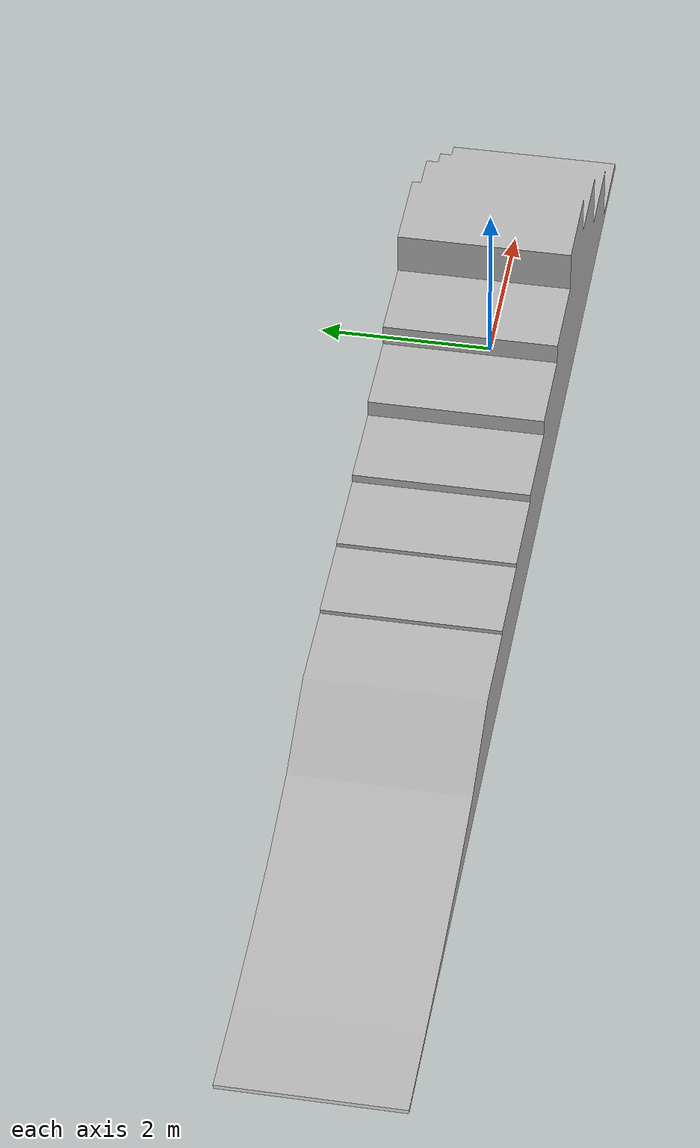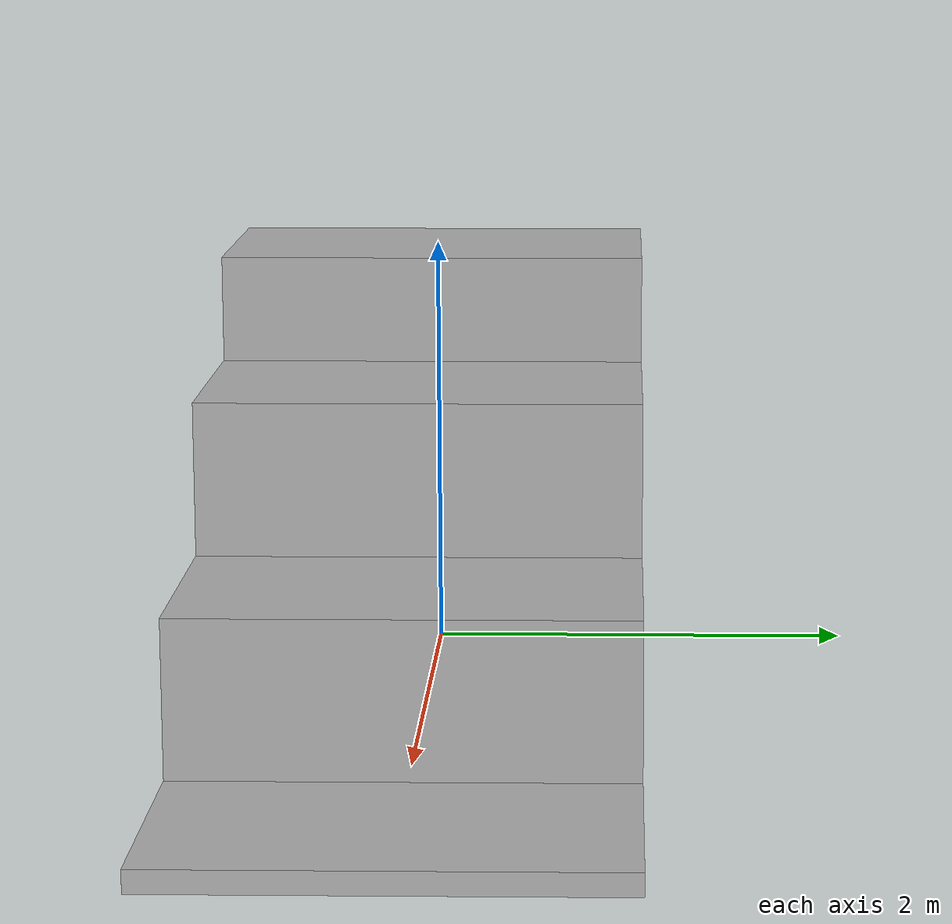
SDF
<?xml version="1.0" ?>
<sdf version="1.5">
  <model name="VariableStep">
    <static>true</static>
    <link name="link">
      <collision name="collision">
        <geometry>
          <mesh>
            <uri>model://VariableStep/meshes/VariableStep.dae</uri>
          </mesh>
        </geometry>
      </collision>
      <visual name="visual">
        <geometry>
          <mesh>
            <uri>model://VariableStep/meshes/VariableStep.dae</uri>
          </mesh>
        </geometry>
      </visual>
    </link>
  </model>
</sdf>
